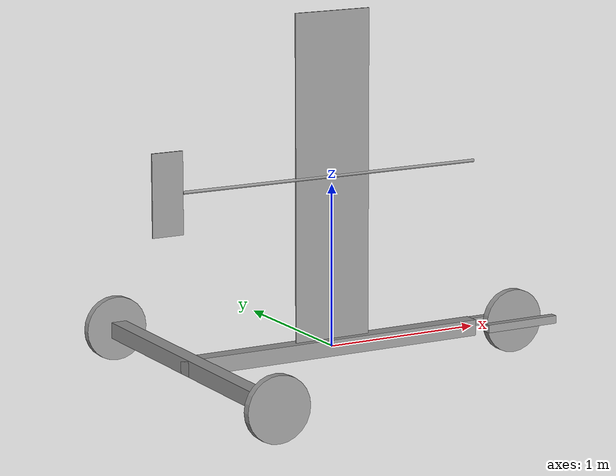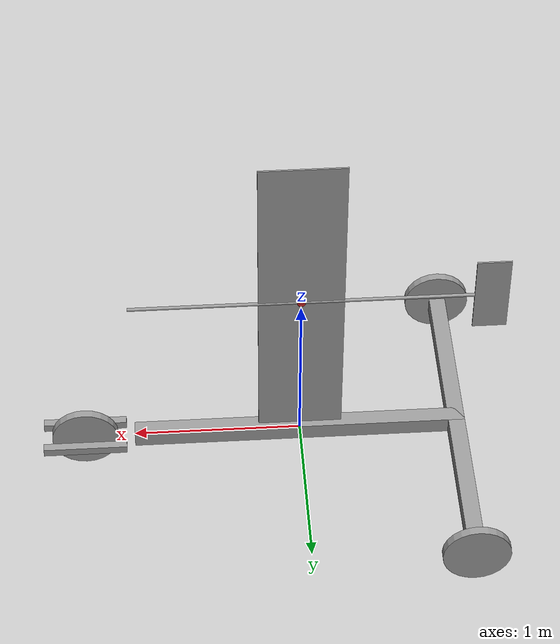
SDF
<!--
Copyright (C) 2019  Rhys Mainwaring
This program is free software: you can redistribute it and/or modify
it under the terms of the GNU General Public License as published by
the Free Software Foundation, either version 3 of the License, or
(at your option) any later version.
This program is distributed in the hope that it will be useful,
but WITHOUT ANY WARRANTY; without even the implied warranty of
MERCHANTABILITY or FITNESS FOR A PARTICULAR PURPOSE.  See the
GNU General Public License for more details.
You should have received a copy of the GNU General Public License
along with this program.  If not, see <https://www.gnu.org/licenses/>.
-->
<?xml version='1.0'?>
<sdf version='1.6'>
  <model name='land_yacht'>
    <pose>0 0 0 0 0 0</pose>
    <static>false</static>

    <plugin name="steering_controller" filename="libLinkJointControllerPlugin.so">
      <input_topic>/cmd_vel</input_topic>
      <link_name>__default__</link_name>
      <link_scale>0</link_scale>
      <link_type>velocity</link_type>
      <link_pid>1000 0 10</link_pid>
      <joint_name>steering_joint</joint_name>
      <joint_scale>0.01</joint_scale>
      <joint_type>position</joint_type>
      <joint_pid>1000 0 10</joint_pid>
    </plugin>

    <plugin name="trim_tab_controller" filename="libLinkJointControllerPlugin.so">
      <input_topic>/cmd_vel2</input_topic>
      <link_name>__default__</link_name>
      <link_scale>0</link_scale>
      <link_type>velocity</link_type>
      <link_pid>1000 0 10</link_pid>
      <joint_name>trim_tab_joint</joint_name>
      <joint_scale>0.01</joint_scale>
      <joint_type>position</joint_type>
      <joint_pid>2000 0 10</joint_pid>
    </plugin>

    <plugin name="wing_sail_liftdrag" filename="libSailPlugin.so">
      <a0>0.0</a0>
      <cla>6.2832</cla>
      <alpha_stall>0.1592</alpha_stall>
      <cla_stall>-0.7083</cla_stall>
      <cda>0.63662</cda>
      <area>1.0</area>
      <fluid_density>1.2</fluid_density>
      <forward>1 0 0</forward>
      <upward>0 1 0</upward>
      <cp>0 0 0</cp>
      <link_name>wing_sail_link</link_name>
      <radial_symmetry>true</radial_symmetry>
      <topic>lift_drag</topic>
    </plugin>

    <plugin name="trim_tab_liftdrag" filename="libSailPlugin.so">
      <a0>0.0</a0>
      <cla>6.2832</cla>
      <alpha_stall>0.1592</alpha_stall>
      <cla_stall>-0.7083</cla_stall>
      <cda>0.63662</cda>
      <area>0.1</area>
      <fluid_density>1.2</fluid_density>
      <forward>1 0 0</forward>
      <upward>0 1 0</upward>
      <cp>0 0 0</cp>
      <link_name>trim_tab_link</link_name>
      <radial_symmetry>true</radial_symmetry>
      <topic>lift_drag</topic>
    </plugin>

    <!-- Base -->
    <link name="base_link">
      <!-- Main beam -->
      <visual name="main_beam_visual">
        <geometry>
          <box>
            <size>2.0 0.1 0.1</size>
          </box>
        </geometry>
        <material>
          <script>
            <name>Gazebo/Gray</name>
          </script>
        </material>
      </visual>
      <collision name="main_beam_collision">
        <geometry>
          <box>
            <size>2.0 0.1 0.1</size>
          </box>
        </geometry>
      </collision>

      <!-- Cross beam -->
      <visual name="cross_beam_visual">
        <pose>-0.95 0 0 0 0 0</pose>
        <geometry>
          <box>
            <size>0.1 2.0 0.1</size>
          </box>
        </geometry>
        <material>
          <script>
            <name>Gazebo/Gray</name>
          </script>
        </material>
      </visual>
      <collision name="cross_beam_collision">
        <pose>-0.95 0 0 0 0 0</pose>
        <geometry>
          <box>
            <size>0.1 2.0 0.1</size>
          </box>
        </geometry>
      </collision>

      <inertial>
        <mass>20</mass>
        <inertia>
          <ixx>3.341</ixx>
          <ixy>0</ixy>
          <iyy>3.341</iyy>
          <iyz>0</iyz>
          <izz>3.341</izz>
        </inertia>
      </inertial>
    </link>

    <!-- Right wheel -->
    <link name="right_wheel_link">
      <pose>-0.95 -1.05 0 1.570796327 0 0</pose>
      <visual name="right_wheel_visual">
        <geometry>
          <cylinder>
            <radius>0.2</radius>
            <length>0.05</length>
          </cylinder>
        </geometry>
        <material>
          <script>
            <name>Gazebo/Gray</name>
          </script>
        </material>
      </visual>
      <collision name="right_wheel_collision">
        <geometry>
          <cylinder>
            <radius>0.2</radius>
            <length>0.05</length>
          </cylinder>
        </geometry>
      </collision>
      <inertial>
        <mass>3.14</mass>
        <inertia>
          <ixx>0.032</ixx>
          <ixy>0</ixy>
          <iyy>0.032</iyy>
          <iyz>0</iyz>
          <izz>0.063</izz>
        </inertia>
      </inertial>
    </link>

    <joint type="revolute" name="right_wheel_joint">
      <pose>0 0 0 0 0 0</pose>
      <child>right_wheel_link</child>
      <parent>base_link</parent>
      <axis>
        <xyz>0 0 1</xyz>
      </axis>
    </joint>

    <!-- Left wheel -->
    <link name="left_wheel_link">
      <pose>-0.95 1.05 0 1.570796327 0 0</pose>
      <visual name="left_wheel_visual">
        <geometry>
          <cylinder>
            <radius>0.2</radius>
            <length>0.05</length>
          </cylinder>
        </geometry>
        <material>
          <script>
            <name>Gazebo/Gray</name>
          </script>
        </material>
      </visual>
      <collision name="left_wheel_collision">
        <geometry>
          <cylinder>
            <radius>0.2</radius>
            <length>0.05</length>
          </cylinder>
        </geometry>
      </collision>
      <inertial>
        <mass>3.14</mass>
        <inertia>
          <ixx>0.032</ixx>
          <ixy>0</ixy>
          <iyy>0.032</iyy>
          <iyz>0</iyz>
          <izz>0.063</izz>
        </inertia>
      </inertial>
    </link>

    <joint type="revolute" name="left_wheel_joint">
      <pose>0 0 0 0 0 0</pose>
      <child>left_wheel_link</child>
      <parent>base_link</parent>
      <axis>
        <xyz>0 0 1</xyz>
      </axis>
    </joint>

    <!-- Steering unit -->
    <link name="steering_link">
      <pose>1.3 0 0 0 0 0</pose>

      <!-- Right wheel support -->
      <visual name="steering_right_beam_visual">
        <pose>0 0.1 0 0 0 0</pose>
        <geometry>
          <box>
            <size>0.5 0.05 0.05</size>
          </box>
        </geometry>
        <material>
          <script>
            <name>Gazebo/Gray</name>
          </script>
        </material>
      </visual>
      <collision name="steering_right_beam_collision">
        <pose>0 0.1 0 0 0 0</pose>
        <geometry>
          <box>
            <size>0.5 0.05 0.05</size>
          </box>
        </geometry>
      </collision>

      <!-- Left wheel support -->
      <visual name="steering_left_beam_visual">
        <pose>0 -0.1 0 0 0 0</pose>
        <geometry>
          <box>
            <size>0.5 0.05 0.05</size>
          </box>
        </geometry>
        <material>
          <script>
            <name>Gazebo/Gray</name>
          </script>
        </material>
      </visual>
      <collision name="steering_left_beam_collision">
        <pose>0 -0.1 0 0 0 0</pose>
        <geometry>
          <box>
            <size>0.5 0.05 0.05</size>
          </box>
        </geometry>
      </collision>

      <inertial>
        <mass>0.62</mass>
        <inertia>
          <ixx>0.032</ixx>
          <ixy>0</ixy>
          <iyy>0.032</iyy>
          <iyz>0</iyz>
          <izz>0.063</izz>
        </inertia>
      </inertial>
    </link>

    <joint type="revolute" name="steering_joint">
      <pose>0 0 0 0 0 0</pose>
      <child>steering_link</child>
      <parent>base_link</parent>
      <axis>
        <xyz>0 0 1</xyz>
        <limit>
          <lower>-0.8</lower>
          <upper>0.8</upper>
        </limit>
      </axis>
    </joint>

    <!-- Front wheel -->
    <link name="front_wheel_link">
      <pose>1.3 0 0 1.570796327 0 0</pose>
      <visual name="front_wheel_visual">
        <geometry>
          <cylinder>
            <radius>0.2</radius>
            <length>0.05</length>
          </cylinder>
        </geometry>
        <material>
          <script>
            <name>Gazebo/Gray</name>
          </script>
        </material>
      </visual>
      <collision name="front_wheel_collision">
        <geometry>
          <cylinder>
            <radius>0.2</radius>
            <length>0.05</length>
          </cylinder>
        </geometry>
      </collision>
      <inertial>
        <mass>3.14</mass>
        <inertia>
          <ixx>0.032</ixx>
          <ixy>0</ixy>
          <iyy>0.032</iyy>
          <iyz>0</iyz>
          <izz>0.063</izz>
        </inertia>
      </inertial>
    </link>

    <joint type="revolute" name="front_wheel_joint">
      <pose>0 0 0 0 0 0</pose>
      <child>front_wheel_link</child>
      <parent>steering_link</parent>
      <axis>
        <xyz>0 0 1</xyz>
      </axis>
    </joint>

    <!-- Wing sail -->
    <link name="wing_sail_link">
      <pose>0 0 1.05 0 0 0</pose>
      <visual name="wing_sail_visual">
        <geometry>
          <box>
            <size>0.5 0.01 2</size>
          </box>
        </geometry>
        <material>
          <script>
            <name>Gazebo/Gray</name>
          </script>
        </material>
      </visual>
      <collision name="wing_sail_collision">
        <geometry>
          <box>
            <size>0.5 0.01 2</size>
          </box>
        </geometry>
      </collision>

      <visual name="trim_tab_support_visual">
        <pose>0 0 0 0 1.570796 0</pose>
        <geometry>
          <cylinder>
            <radius>0.01</radius>
            <length>2</length>
          </cylinder>
        </geometry>
        <material>
          <script>
            <name>Gazebo/Gray</name>
          </script>
        </material>
      </visual>

      <inertial>
        <pose>0 0 0 0 0 0</pose>
        <mass>1</mass>
        <inertia>
          <ixx>0.16</ixx>
          <ixy>0</ixy>
          <iyy>0.16</iyy>
          <iyz>0</iyz>
          <izz>0.16</izz>
        </inertia>
      </inertial>

      <!-- Sensors -->
      <sensor name="anemometer_sensor" type="anemometer">
        <pose>0 0 0 0 0 0</pose>
        <always_on>true</always_on>
        <update_rate>50</update_rate>
        <topic>anemometer</topic>
      </sensor>
      <visual name="anemometer_visual">
        <pose>0 0 0 0 0 0</pose>
        <geometry>
          <cylinder>
            <radius>0.025</radius>
            <length>0.025</length>
          </cylinder>
        </geometry>
        <material>
          <script>
            <name>Gazebo/Red</name>
          </script>
        </material>
      </visual>
    </link>

    <joint type="revolute" name="wing_sail_joint">
      <pose>0.25 0 0 0 0 0</pose>
      <child>wing_sail_link</child>
      <parent>base_link</parent>
      <axis>
        <xyz>0 0 1</xyz>
        <initial_position>0</initial_position>
        <limit>
          <lower>-1.5</lower>
          <upper>1.5</upper>
        </limit>
      </axis>
      <sensor name="force_torque_sensor" type="force_torque">
        <always_on>true</always_on>
        <update_rate>30</update_rate>
        <visualize>true</visualize>
      </sensor>
    </joint>

    <!-- Trim tab -->
    <link name="trim_tab_link">
      <pose>-1.1 0 1.05 0 0 0</pose>

      <visual name="trim_tab_visual">
        <geometry>
          <box>
            <size>0.2 0.01 0.5</size>
          </box>
        </geometry>
        <material>
          <script>
            <name>Gazebo/Gray</name>
          </script>
        </material>
      </visual>

      <collision name="trim_tab_collision">
        <geometry>
          <box>
            <size>0.2 0.01 0.5</size>
          </box>
        </geometry>
      </collision>

      <inertial>
        <pose>0 0 0 0 0 0</pose>
        <mass>1</mass>
        <inertia>
          <ixx>0.16</ixx>
          <ixy>0</ixy>
          <iyy>0.16</iyy>
          <iyz>0</iyz>
          <izz>0.16</izz>
        </inertia>
      </inertial>

    </link>

    <joint type="revolute" name="trim_tab_joint">
      <pose>0.025 0 0 0 0 0</pose>
      <child>trim_tab_link</child>
      <parent>wing_sail_link</parent>
      <axis>
        <xyz>0 0 1</xyz>
        <initial_position>0</initial_position>
        <limit>
          <lower>-1.5</lower>
          <upper>1.5</upper>
        </limit>
      </axis>
      <sensor name="trim_tab_force_torque" type="force_torque">
        <always_on>true</always_on>
        <update_rate>30</update_rate>
        <visualize>true</visualize>
      </sensor>
    </joint>

  </model>
</sdf>
